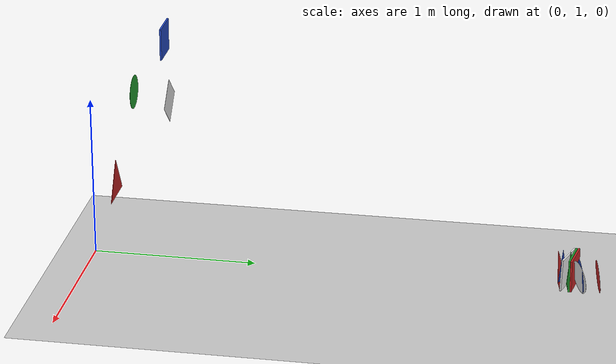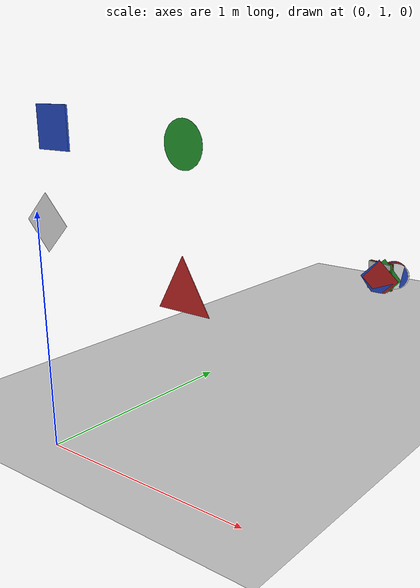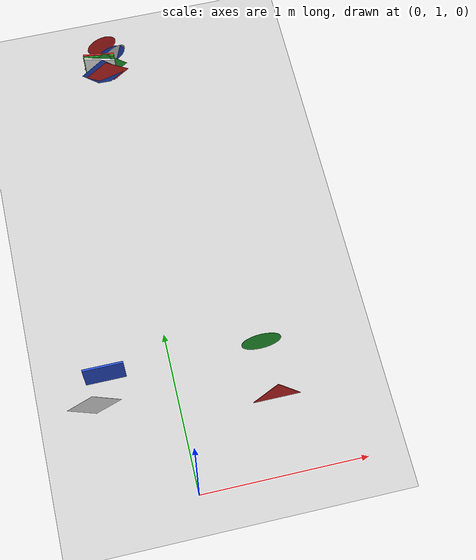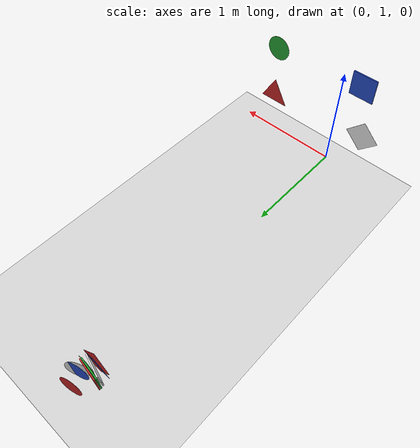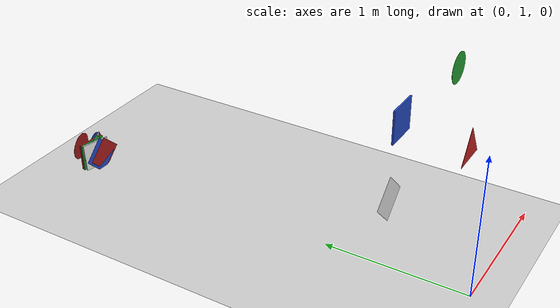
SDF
<sdf version="1.6">
 <world name="default">
  <light name="room_point" type="point">
   <cast_shadows>0</cast_shadows>
   <pose>0 0 1.5 0 -0 0</pose>
   <attenuation>
    <range>20</range>
    <constant>0.1</constant>
    <linear>0.04</linear>
    <quadratic>0.03</quadratic>
   </attenuation>
   <direction>0 0 -1</direction>
   <diffuse>0.6 0.6 0.55 1</diffuse>
   <specular>0.1 0.1 0.1 1</specular>
  </light>
  <light name="left_spot" type="spot">
   <pose>0 1.794 2.42 0 -0 0</pose>
   <attenuation>
    <range>6</range>
    <constant>0.3</constant>
    <linear>0.04</linear>
    <quadratic>0.03</quadratic>
   </attenuation>
   <direction>0 0 -1</direction>
   <diffuse>0.6 0.6 0.55 1</diffuse>
   <specular>0.1 0.1 0.1 1</specular>
   <spot><inner_angle>1.3</inner_angle><outer_angle>1.45</outer_angle><falloff>1</falloff></spot>
  </light>
  <light name="right_spot" type="spot">
   <pose>0 -1.769 2.42 0 -0 0</pose>
   <attenuation>
    <range>6</range>
    <constant>0.3</constant>
    <linear>0.04</linear>
    <quadratic>0.03</quadratic>
   </attenuation>
   <direction>0 0 -1</direction>
   <diffuse>0.6 0.6 0.55 1</diffuse>
   <specular>0.1 0.1 0.1 1</specular>
   <spot><inner_angle>1.3</inner_angle><outer_angle>1.45</outer_angle><falloff>1</falloff></spot>
  </light>
  <light name="lamp_spot" type="spot">
   <cast_shadows>0</cast_shadows>
   <pose>1.659 2.113 1.858 0 -0 0</pose>
   <attenuation>
    <range>20</range>
    <constant>0.7</constant>
    <linear>0.01</linear>
    <quadratic>0</quadratic>
   </attenuation>
   <direction>0 0 -1</direction>
   <diffuse>0.2 0.2 0.2 1</diffuse>
   <specular>0.2 0.2 0.2 1</specular>
   <spot><inner_angle>0.05</inner_angle><outer_angle>1</outer_angle><falloff>2</falloff></spot>
  </light>
  <model name="Square_Green">
   <pose>-0.028518 3.93537 0.104242 0.009242 -0.009473 -0.117601</pose>
   <link name="link">
    <gravity>0</gravity>
    <collision name="collision"><geometry><box><size>0.2 0.01 0.2</size></box></geometry></collision>
    <visual name="visual">
     <geometry><box><size>0.2 0.01 0.2</size></box></geometry>
     <material>
      <script><uri>file://media/materials/scripts/gazebo.material</uri><name>Gazebo/Green</name></script>
     </material>
    </visual>
    <inertial>
     <inertia><ixx>1</ixx><ixy>0</ixy><ixz>0</ixz><iyy>1</iyy><iyz>0</iyz><izz>1</izz></inertia>
     <mass>1</mass>
    </inertial>
   </link>
  </model>
  <model name="Square_Red">
   <pose>-0.026794 3.94854 0.104671 -0.001199 0.001609 -0.139407</pose>
   <link name="link">
    <gravity>0</gravity>
    <collision name="collision"><geometry><box><size>0.2 0.01 0.2</size></box></geometry></collision>
    <visual name="visual">
     <geometry><box><size>0.2 0.01 0.2</size></box></geometry>
     <material>
      <script><uri>file://media/materials/scripts/gazebo.material</uri><name>Gazebo/Red</name></script>
     </material>
    </visual>
    <inertial>
     <inertia><ixx>1</ixx><ixy>0</ixy><ixz>0</ixz><iyy>1</iyy><iyz>0</iyz><izz>1</izz></inertia>
     <mass>1</mass>
    </inertial>
   </link>
  </model>
  <model name="Square_Blue">
   <pose>-0.353053 1.38 1.28585 0 -0 0</pose>
   <link name="link">
    <gravity>0</gravity>
    <collision name="collision"><geometry><box><size>0.2 0.01 0.2</size></box></geometry></collision>
    <visual name="visual">
     <geometry><box><size>0.2 0.01 0.2</size></box></geometry>
     <material>
      <script><uri>file://media/materials/scripts/gazebo.material</uri><name>Gazebo/Blue</name></script>
     </material>
    </visual>
    <inertial>
     <inertia><ixx>1</ixx><ixy>0</ixy><ixz>0</ixz><iyy>1</iyy><iyz>0</iyz><izz>1</izz></inertia>
     <mass>1</mass>
    </inertial>
   </link>
  </model>
  <model name="Square_White">
   <pose>-0.026146 3.9042 0.10582 -0.044175 -0.013278 -0.270495</pose>
   <link name="link">
    <gravity>0</gravity>
    <collision name="collision"><geometry><box><size>0.2 0.01 0.2</size></box></geometry></collision>
    <visual name="visual">
     <geometry><box><size>0.2 0.01 0.2</size></box></geometry>
     <material>
      <script><uri>file://media/materials/scripts/gazebo.material</uri><name>Gazebo/White</name></script>
     </material>
    </visual>
    <inertial>
     <inertia><ixx>1</ixx><ixy>0</ixy><ixz>0</ixz><iyy>1</iyy><iyz>0</iyz><izz>1</izz></inertia>
     <mass>1</mass>
    </inertial>
   </link>
  </model>
  <model name="Circle_Green">
   <pose>0.424752 1.38 1.25247 1.5708 -0 0</pose>
   <link name="link">
    <gravity>0</gravity>
    <collision name="collision">
     <geometry><cylinder><radius>0.05</radius><length>0.001</length></cylinder></geometry>
    </collision>
    <visual name="visual">
     <geometry><cylinder><radius>0.1</radius><length>0.001</length></cylinder></geometry>
     <material>
      <script><uri>file://media/materials/scripts/gazebo.material</uri><name>Gazebo/Green</name></script>
     </material>
    </visual>
    <inertial>
     <inertia><ixx>1</ixx><ixy>0</ixy><ixz>0</ixz><iyy>1</iyy><iyz>0</iyz><izz>1</izz></inertia>
     <mass>1</mass>
    </inertial>
   </link>
  </model>
  <model name="Circle_Red">
   <pose>0.010096 4.0911 0.091861 1.6706 0.009726 0.214639</pose>
   <link name="link">
    <gravity>0</gravity>
    <collision name="collision">
     <geometry><cylinder><radius>0.05</radius><length>0.001</length></cylinder></geometry>
    </collision>
    <visual name="visual">
     <geometry><cylinder><radius>0.1</radius><length>0.001</length></cylinder></geometry>
     <material>
      <script><uri>file://media/materials/scripts/gazebo.material</uri><name>Gazebo/Red</name></script>
     </material>
    </visual>
    <inertial>
     <inertia><ixx>1</ixx><ixy>0</ixy><ixz>0</ixz><iyy>1</iyy><iyz>0</iyz><izz>1</izz></inertia>
     <mass>1</mass>
    </inertial>
   </link>
  </model>
  <model name="Circle_Blue">
   <pose>0.054992 3.99281 0.106944 1.65429 -0.011628 0.251775</pose>
   <link name="link">
    <gravity>0</gravity>
    <collision name="collision">
     <geometry><cylinder><radius>0.05</radius><length>0.001</length></cylinder></geometry>
    </collision>
    <visual name="visual">
     <geometry><cylinder><radius>0.1</radius><length>0.001</length></cylinder></geometry>
     <material>
      <script><uri>file://media/materials/scripts/gazebo.material</uri><name>Gazebo/Blue</name></script>
     </material>
    </visual>
    <inertial>
     <inertia><ixx>1</ixx><ixy>0</ixy><ixz>0</ixz><iyy>1</iyy><iyz>0</iyz><izz>1</izz></inertia>
     <mass>1</mass>
    </inertial>
   </link>
  </model>
  <model name="Circle_White">
   <pose>0.067747 3.98517 0.104829 1.69969 -0.05288 0.479877</pose>
   <link name="link">
    <gravity>0</gravity>
    <collision name="collision">
     <geometry><cylinder><radius>0.05</radius><length>0.001</length></cylinder></geometry>
    </collision>
    <visual name="visual">
     <geometry><cylinder><radius>0.1</radius><length>0.001</length></cylinder></geometry>
     <material>
      <script><uri>file://media/materials/scripts/gazebo.material</uri><name>Gazebo/White</name></script>
     </material>
    </visual>
    <inertial>
     <inertia><ixx>1</ixx><ixy>0</ixy><ixz>0</ixz><iyy>1</iyy><iyz>0</iyz><izz>1</izz></inertia>
     <mass>1</mass>
    </inertial>
   </link>
  </model>
  <model name="Diamond_Red">
   <pose>0.009974 3.86117 0.098759 0.117809 0.76006 0.10318</pose>
   <link name="link">
    <gravity>0</gravity>
    <collision name="collision"><geometry><box><size>0.2 0.001 0.02</size></box></geometry></collision>
    <visual name="visual">
     <geometry><box><size>0.2 0.001 0.2</size></box></geometry>
     <material>
      <script><uri>file://media/materials/scripts/gazebo.material</uri><name>Gazebo/Red</name></script>
     </material>
    </visual>
    <inertial>
     <inertia><ixx>1</ixx><ixy>0</ixy><ixz>0</ixz><iyy>1</iyy><iyz>0</iyz><izz>1</izz></inertia>
     <mass>1</mass>
    </inertial>
   </link>
  </model>
  <model name="Diamond_Green">
   <pose>0.007651 3.9212 0.096497 -0.024778 0.792307 -0.057362</pose>
   <link name="link">
    <gravity>0</gravity>
    <collision name="collision"><geometry><box><size>0.2 0.001 0.02</size></box></geometry></collision>
    <visual name="visual">
     <geometry><box><size>0.2 0.001 0.2</size></box></geometry>
     <material>
      <script><uri>file://media/materials/scripts/gazebo.material</uri><name>Gazebo/Green</name></script>
     </material>
    </visual>
    <inertial>
     <inertia><ixx>1</ixx><ixy>0</ixy><ixz>0</ixz><iyy>1</iyy><iyz>0</iyz><izz>1</izz></inertia>
     <mass>1</mass>
    </inertial>
    <gravity>0</gravity>
   </link>
  </model>
  <model name="Diamond_Blue">
   <pose>-0.016031 3.86964 0.096598 -0.073852 0.81438 -0.086033</pose>
   <link name="link">
    <gravity>0</gravity>
    <collision name="collision"><geometry><box><size>0.2 0.001 0.02</size></box></geometry></collision>
    <visual name="visual">
     <geometry><box><size>0.2 0.001 0.2</size></box></geometry>
     <material>
      <script><uri>file://media/materials/scripts/gazebo.material</uri><name>Gazebo/Blue</name></script>
     </material>
    </visual>
    <inertial>
     <inertia><ixx>1</ixx><ixy>0</ixy><ixz>0</ixz><iyy>1</iyy><iyz>0</iyz><izz>1</izz></inertia>
     <mass>1</mass>
    </inertial>
    <gravity>0</gravity>
   </link>
  </model>
  <model name="Diamond_White">
   <pose>-0.447532 1.38 0.846947 0 0.804087 0</pose>
   <link name="link">
    <gravity>0</gravity>
    <collision name="collision"><geometry><box><size>0.2 0.001 0.02</size></box></geometry></collision>
    <visual name="trianglered">
     <geometry><box><size>0.2 0.001 0.2</size></box></geometry>
     <material>
      <script><uri>file://media/materials/scripts/gazebo.material</uri><name>Gazebo/White</name></script>
     </material>
    </visual>
    <inertial>
     <inertia><ixx>1</ixx><ixy>0</ixy><ixz>0</ixz><iyy>1</iyy><iyz>0</iyz><izz>1</izz></inertia>
     <mass>1</mass>
    </inertial>
    <gravity>0</gravity>
   </link>
  </model>
  <model name="Triangle_Red">
   <pose>0.385854 1.38 0.756179 1.5708 -0 0</pose>
   <link name="body">
    <collision name="triangle_frame"><geometry><box><size>0.1 0.1 0.1</size></box></geometry></collision>
    <visual name="trianglered">
     <cast_shadows>0</cast_shadows>
     <geometry>
      <mesh><uri>model://traengle/meshes/triangle_1.dae</uri><scale>0.15 0.15 0.15</scale></mesh>
     </geometry>
     <material>
      <script><uri>file://media/materials/scripts/gazebo.material</uri><name>Gazebo/Red</name></script>
     </material>
    </visual>
    <inertial>
     <inertia><ixx>1</ixx><ixy>0</ixy><ixz>0</ixz><iyy>1</iyy><iyz>0</iyz><izz>1</izz></inertia>
     <mass>1</mass>
    </inertial>
    <gravity>0</gravity>
   </link>
  </model>
  <model name="ground_plane">
   <static>1</static>
   <link name="link">
    <collision name="collision">
     <geometry><plane><normal>0 0 1</normal><size>100 100</size></plane></geometry>
     <surface><friction><ode><mu>100</mu><mu2>50</mu2></ode></friction></surface>
    </collision>
    <visual name="visual">
     <cast_shadows>0</cast_shadows>
     <geometry><plane><normal>0 0 1</normal><size>100 100</size></plane></geometry>
     <material>
      <script><uri>file://media/materials/scripts/gazebo.material</uri><name>Gazebo/Grey</name></script>
     </material>
    </visual>
   </link>
  </model>
  <scene><ambient>0.7 0.7 0.7 1</ambient><background>0.7 0.7 0.7 1</background><shadows>1</shadows></scene>
  <gravity>0 0 -9.8</gravity>
  <magnetic_field>6e-06 2.3e-05 -4.2e-05</magnetic_field>
  <atmosphere type="adiabatic"/>
  <physics name="default_physics" default="0" type="ode">
   <max_step_size>0.001</max_step_size>
   <real_time_factor>1</real_time_factor>
   <real_time_update_rate>1000</real_time_update_rate>
  </physics>
  <spherical_coordinates>
   <surface_model>EARTH_WGS84</surface_model>
   <latitude_deg>0</latitude_deg>
   <longitude_deg>0</longitude_deg>
   <elevation>0</elevation>
   <heading_deg>0</heading_deg>
  </spherical_coordinates>
 </world>
</sdf>
